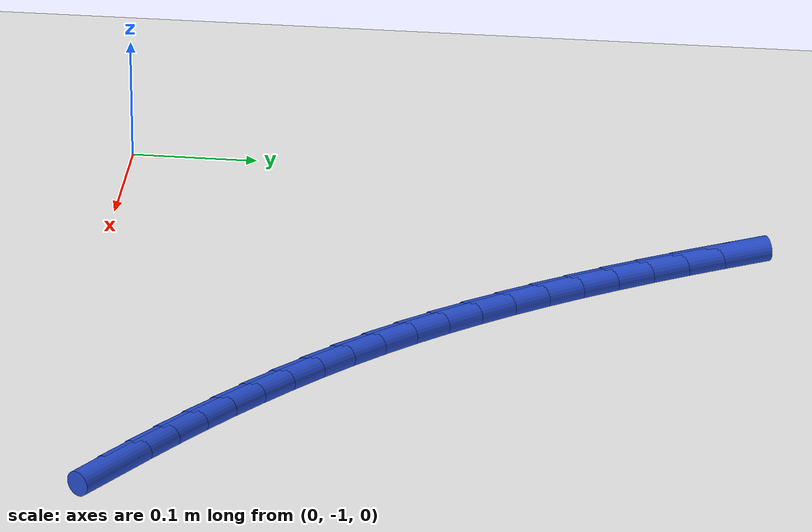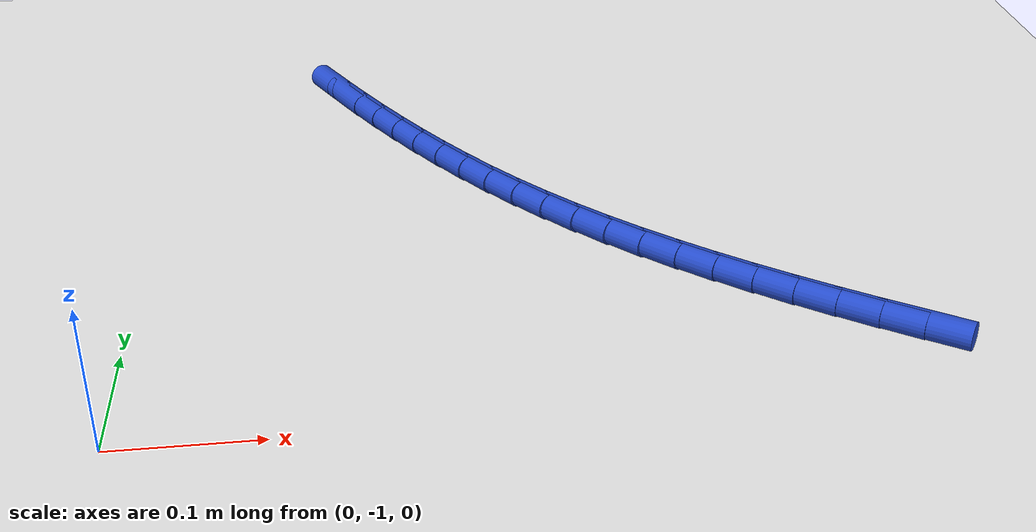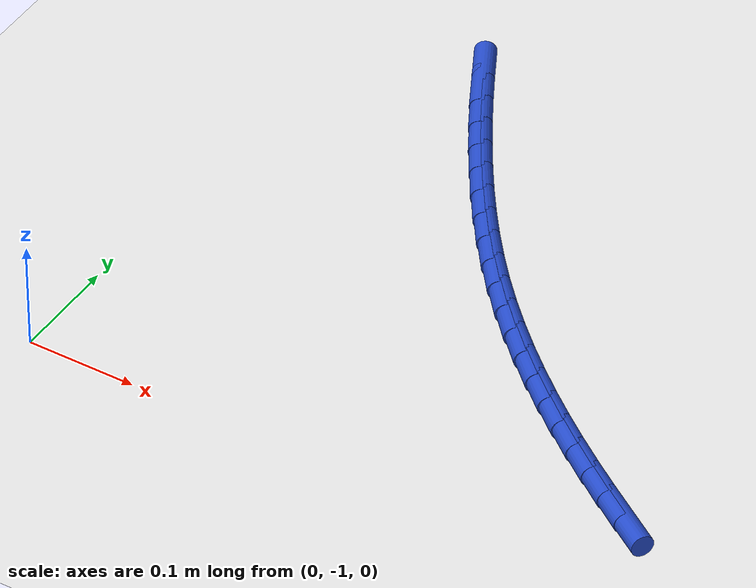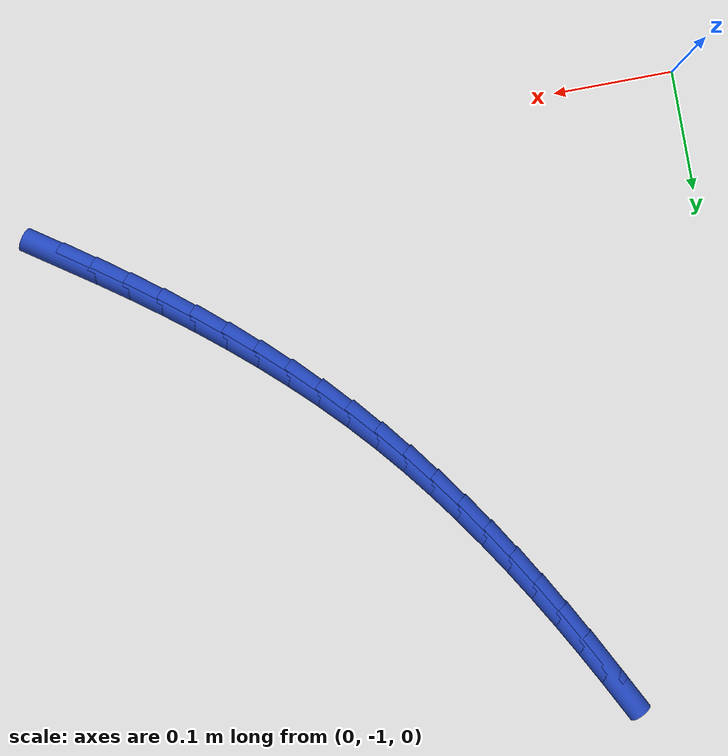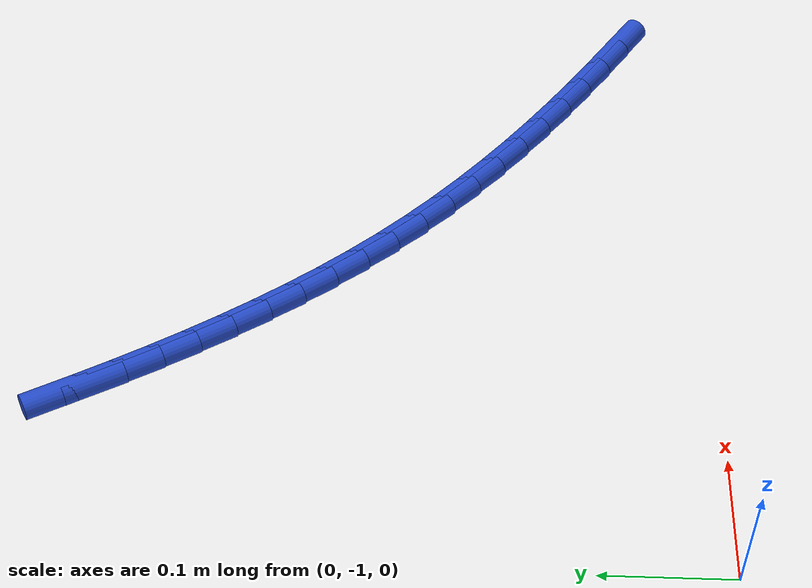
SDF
<sdf version="1.6">
 <world name="default">
  <model name="ground_plane">
   <static>1</static>
   <link name="link">
    <collision name="collision">
     <geometry><plane><normal>0 0 1</normal><size>100 100</size></plane></geometry>
     <surface><friction><ode><mu>100</mu><mu2>50</mu2></ode></friction></surface>
    </collision>
    <visual name="visual">
     <cast_shadows>0</cast_shadows>
     <geometry><plane><normal>0 0 1</normal><size>100 100</size></plane></geometry>
     <material>
      <script><uri>file://media/materials/scripts/gazebo.material</uri><name>Gazebo/WhiteGlow</name></script>
     </material>
    </visual>
   </link>
  </model>
  <model name="line">
   <link name="link_203">
    <pose>0.521313497499247 -0.9363532953267973 0.01 0 1.57 -0.598485043793713</pose>
    <collision name="collision">
     <geometry><cylinder><radius>0.01</radius><length>0.08</length></cylinder></geometry>
    </collision>
    <visual name="visual">
     <material>
      <script><name>Gazebo/Blue</name><uri>file://media/materials/scripts/gazebo.material</uri></script>
     </material>
     <geometry><cylinder><radius>0.01</radius><length>0.08</length></cylinder></geometry>
    </visual>
   </link>
   <link name="link_204">
    <pose>0.49621403319718876 -0.9192375919134784 0.01 0 1.57 -0.6163528448066257</pose>
    <collision name="collision">
     <geometry><cylinder><radius>0.01</radius><length>0.08</length></cylinder></geometry>
    </collision>
    <visual name="visual">
     <material>
      <script><name>Gazebo/Blue</name><uri>file://media/materials/scripts/gazebo.material</uri></script>
     </material>
     <geometry><cylinder><radius>0.01</radius><length>0.08</length></cylinder></geometry>
    </visual>
   </link>
   <link name="link_205">
    <pose>0.4714953700529947 -0.9017264634369137 0.01 0 1.57 -0.6363301136303663</pose>
    <collision name="collision">
     <geometry><cylinder><radius>0.01</radius><length>0.08</length></cylinder></geometry>
    </collision>
    <visual name="visual">
     <material>
      <script><name>Gazebo/Blue</name><uri>file://media/materials/scripts/gazebo.material</uri></script>
     </material>
     <geometry><cylinder><radius>0.01</radius><length>0.08</length></cylinder></geometry>
    </visual>
   </link>
   <link name="link_206">
    <pose>0.4472042603302316 -0.8837788538816351 0.01 0 1.57 -0.6584470848422487</pose>
    <collision name="collision">
     <geometry><cylinder><radius>0.01</radius><length>0.08</length></cylinder></geometry>
    </collision>
    <visual name="visual">
     <material>
      <script><name>Gazebo/Blue</name><uri>file://media/materials/scripts/gazebo.material</uri></script>
     </material>
     <geometry><cylinder><radius>0.01</radius><length>0.08</length></cylinder></geometry>
    </visual>
   </link>
   <link name="link_207">
    <pose>0.4233874562924661 -0.8653537072321742 0.01 0 1.57 -0.6827287305504476</pose>
    <collision name="collision">
     <geometry><cylinder><radius>0.01</radius><length>0.08</length></cylinder></geometry>
    </collision>
    <visual name="visual">
     <material>
      <script><name>Gazebo/Blue</name><uri>file://media/materials/scripts/gazebo.material</uri></script>
     </material>
     <geometry><cylinder><radius>0.01</radius><length>0.08</length></cylinder></geometry>
    </visual>
   </link>
   <link name="link_208">
    <pose>0.4000917102032644 -0.846409967473062 0.01 0 1.57 -0.7091916394946396</pose>
    <collision name="collision">
     <geometry><cylinder><radius>0.01</radius><length>0.08</length></cylinder></geometry>
    </collision>
    <visual name="visual">
     <material>
      <script><name>Gazebo/Blue</name><uri>file://media/materials/scripts/gazebo.material</uri></script>
     </material>
     <geometry><cylinder><radius>0.01</radius><length>0.08</length></cylinder></geometry>
    </visual>
   </link>
   <link name="link_209">
    <pose>0.3773637743261946 -0.8269065785888308 0.01 0 1.57 -0.7378404946540863</pose>
    <collision name="collision">
     <geometry><cylinder><radius>0.01</radius><length>0.08</length></cylinder></geometry>
    </collision>
    <visual name="visual">
     <material>
      <script><name>Gazebo/Blue</name><uri>file://media/materials/scripts/gazebo.material</uri></script>
     </material>
     <geometry><cylinder><radius>0.01</radius><length>0.08</length></cylinder></geometry>
    </visual>
   </link>
   <link name="link_210">
    <pose>0.35525040092482285 -0.806802484564012 0.01 0 1.57 -0.7686642185763656</pose>
    <collision name="collision">
     <geometry><cylinder><radius>0.01</radius><length>0.08</length></cylinder></geometry>
    </collision>
    <visual name="visual">
     <material>
      <script><name>Gazebo/Blue</name><uri>file://media/materials/scripts/gazebo.material</uri></script>
     </material>
     <geometry><cylinder><radius>0.01</radius><length>0.08</length></cylinder></geometry>
    </visual>
   </link>
   <link name="link_211">
    <pose>0.3337983422627158 -0.7860566293831375 0.01 0 1.57 -0.8016319148667299</pose>
    <collision name="collision">
     <geometry><cylinder><radius>0.01</radius><length>0.08</length></cylinder></geometry>
    </collision>
    <visual name="visual">
     <material>
      <script><name>Gazebo/Blue</name><uri>file://media/materials/scripts/gazebo.material</uri></script>
     </material>
     <geometry><cylinder><radius>0.01</radius><length>0.08</length></cylinder></geometry>
    </visual>
   </link>
   <link name="link_212">
    <pose>0.3130543506034403 -0.7646279570307382 0.01 0 1.57 -0.8366735178781642</pose>
    <collision name="collision">
     <geometry><cylinder><radius>0.01</radius><length>0.08</length></cylinder></geometry>
    </collision>
    <visual name="visual">
     <material>
      <script><name>Gazebo/Blue</name><uri>file://media/materials/scripts/gazebo.material</uri></script>
     </material>
     <geometry><cylinder><radius>0.01</radius><length>0.08</length></cylinder></geometry>
    </visual>
   </link>
   <link name="link_213">
    <pose>0.293064874348948 -0.7424757555971395 0.01 0 1.57 -0.872238079888497</pose>
    <collision name="collision">
     <geometry><cylinder><radius>0.01</radius><length>0.08</length></cylinder></geometry>
    </collision>
    <visual name="visual">
     <material>
      <script><name>Gazebo/Blue</name><uri>file://media/materials/scripts/gazebo.material</uri></script>
     </material>
     <geometry><cylinder><radius>0.01</radius><length>0.08</length></cylinder></geometry>
    </visual>
   </link>
   <link name="link_214">
    <pose>0.27384697820157455 -0.7195925885215478 0.01 0 1.57 -0.9056017207613943</pose>
    <collision name="collision">
     <geometry><cylinder><radius>0.01</radius><length>0.08</length></cylinder></geometry>
    </collision>
    <visual name="visual">
     <material>
      <script><name>Gazebo/Blue</name><uri>file://media/materials/scripts/gazebo.material</uri></script>
     </material>
     <geometry><cylinder><radius>0.01</radius><length>0.08</length></cylinder></geometry>
    </visual>
   </link>
   <link name="link_215">
    <pose>0.2553642535035949 -0.6960315747462273 0.01 0 1.57 -0.9364858974070126</pose>
    <collision name="collision">
     <geometry><cylinder><radius>0.01</radius><length>0.08</length></cylinder></geometry>
    </collision>
    <visual name="visual">
     <material>
      <script><name>Gazebo/Blue</name><uri>file://media/materials/scripts/gazebo.material</uri></script>
     </material>
     <geometry><cylinder><radius>0.01</radius><length>0.08</length></cylinder></geometry>
    </visual>
   </link>
   <link name="link_216">
    <pose>0.23757462141559166 -0.6718522543679126 0.01 0 1.57 -0.9649169808220973</pose>
    <collision name="collision">
     <geometry><cylinder><radius>0.01</radius><length>0.08</length></cylinder></geometry>
    </collision>
    <visual name="visual">
     <material>
      <script><name>Gazebo/Blue</name><uri>file://media/materials/scripts/gazebo.material</uri></script>
     </material>
     <geometry><cylinder><radius>0.01</radius><length>0.08</length></cylinder></geometry>
    </visual>
   </link>
   <link name="link_217">
    <pose>0.2204360030981459 -0.6471141674833363 0.01 0 1.57 -0.9909351797593771</pose>
    <collision name="collision">
     <geometry><cylinder><radius>0.01</radius><length>0.08</length></cylinder></geometry>
    </collision>
    <visual name="visual">
     <material>
      <script><name>Gazebo/Blue</name><uri>file://media/materials/scripts/gazebo.material</uri></script>
     </material>
     <geometry><cylinder><radius>0.01</radius><length>0.08</length></cylinder></geometry>
    </visual>
   </link>
   <link name="link_218">
    <pose>0.20390631971183926 -0.6218768541892314 0.01 0 1.57 -1.014589389731948</pose>
    <collision name="collision">
     <geometry><cylinder><radius>0.01</radius><length>0.08</length></cylinder></geometry>
    </collision>
    <visual name="visual">
     <material>
      <script><name>Gazebo/Blue</name><uri>file://media/materials/scripts/gazebo.material</uri></script>
     </material>
     <geometry><cylinder><radius>0.01</radius><length>0.08</length></cylinder></geometry>
    </visual>
   </link>
   <link name="link_219">
    <pose>0.18794349241725322 -0.5961998545823314 0.01 0 1.57 -1.0359327598905583</pose>
    <collision name="collision">
     <geometry><cylinder><radius>0.01</radius><length>0.08</length></cylinder></geometry>
    </collision>
    <visual name="visual">
     <material>
      <script><name>Gazebo/Blue</name><uri>file://media/materials/scripts/gazebo.material</uri></script>
     </material>
     <geometry><cylinder><radius>0.01</radius><length>0.08</length></cylinder></geometry>
    </visual>
   </link>
   <link name="link_220">
    <pose>0.1725054423749694 -0.5701427087593695 0.01 0 1.57 -1.0550189605924216</pose>
    <collision name="collision">
     <geometry><cylinder><radius>0.01</radius><length>0.08</length></cylinder></geometry>
    </collision>
    <visual name="visual">
     <material>
      <script><name>Gazebo/Blue</name><uri>file://media/materials/scripts/gazebo.material</uri></script>
     </material>
     <geometry><cylinder><radius>0.01</radius><length>0.08</length></cylinder></geometry>
    </visual>
   </link>
   <link name="link_221">
    <pose>0.15755009074556942 -0.5437649568170787 0.01 0 1.57 -1.0718990874747256</pose>
    <collision name="collision">
     <geometry><cylinder><radius>0.01</radius><length>0.08</length></cylinder></geometry>
    </collision>
    <visual name="visual">
     <material>
      <script><name>Gazebo/Blue</name><uri>file://media/materials/scripts/gazebo.material</uri></script>
     </material>
     <geometry><cylinder><radius>0.01</radius><length>0.08</length></cylinder></geometry>
    </visual>
   </link>
   <link name="link_222">
    <pose>0.14303535868963477 -0.5171261388521923 0.01 0 1.57 -1.0866551055308458</pose>
    <collision name="collision">
     <geometry><cylinder><radius>0.01</radius><length>0.08</length></cylinder></geometry>
    </collision>
    <visual name="visual">
     <material>
      <script><name>Gazebo/Blue</name><uri>file://media/materials/scripts/gazebo.material</uri></script>
     </material>
     <geometry><cylinder><radius>0.01</radius><length>0.08</length></cylinder></geometry>
    </visual>
   </link>
  </model>
 </world>
</sdf>
